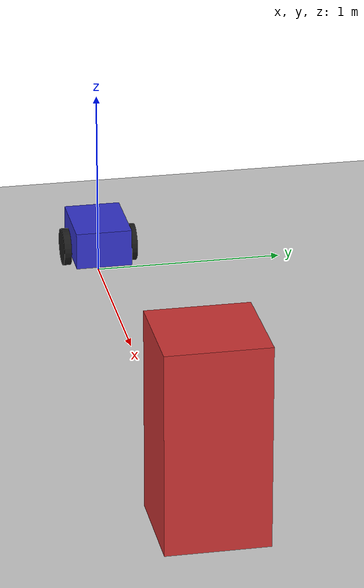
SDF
<?xml version="1.0" ?>
<sdf version="1.9">
  <world name="dimos_bot_world">

    <physics name="1ms" type="ignored">
      <max_step_size>0.001</max_step_size>
      <real_time_factor>1.0</real_time_factor>
    </physics>

    <plugin filename="gz-sim-physics-system" name="gz::sim::systems::Physics">
      <engine>
        <!-- Match the actual filename built by our flake (libgz-physics7-…). -->
        <filename>gz-physics8-bullet-featherstone-plugin</filename>
      </engine>
    </plugin>
    <plugin filename="gz-sim-user-commands-system"     name="gz::sim::systems::UserCommands"/>
    <plugin filename="gz-sim-scene-broadcaster-system" name="gz::sim::systems::SceneBroadcaster"/>
    <plugin filename="gz-sim-sensors-system"           name="gz::sim::systems::Sensors">
      <!-- ogre2 engine = OGRE-Next 2.3 with EGL surfaceless support
           (no X server / no DISPLAY required). -->
      <render_engine>ogre2</render_engine>
    </plugin>

    <light type="directional" name="sun">
      <cast_shadows>true</cast_shadows>
      <pose>0 0 10 0 0 0</pose>
      <diffuse>1 1 1 1</diffuse>
      <specular>0.5 0.5 0.5 1</specular>
      <attenuation>
        <range>1000</range><constant>0.9</constant>
        <linear>0.01</linear><quadratic>0.001</quadratic>
      </attenuation>
      <direction>-0.5 0.1 -0.9</direction>
    </light>

    <model name="ground_plane">
      <static>true</static>
      <link name="link">
        <collision name="collision">
          <geometry><plane><normal>0 0 1</normal><size>100 100</size></plane></geometry>
        </collision>
        <visual name="visual">
          <geometry><plane><normal>0 0 1</normal><size>100 100</size></plane></geometry>
          <material><ambient>0.8 0.8 0.8 1</ambient><diffuse>0.8 0.8 0.8 1</diffuse></material>
        </visual>
      </link>
    </model>

    <model name="obstacle">
      <static>true</static>
      <pose>3 0 0.5 0 0 0</pose>
      <link name="link">
        <collision name="c"><geometry><box><size>0.5 0.5 1.0</size></box></geometry></collision>
        <visual    name="v"><geometry><box><size>0.5 0.5 1.0</size></box></geometry>
          <material><ambient>0.8 0.2 0.2 1</ambient><diffuse>0.8 0.2 0.2 1</diffuse></material>
        </visual>
      </link>
    </model>

    <model name="dimos_bot">
      <pose>0 0 0.2 0 0 0</pose>

      <link name="chassis">
        <pose>0 0 0.0 0 0 0</pose>
        <inertial>
          <mass>2.0</mass>
          <inertia><ixx>0.05</ixx><iyy>0.05</iyy><izz>0.05</izz>
                   <ixy>0</ixy><ixz>0</ixz><iyz>0</iyz></inertia>
        </inertial>
        <collision name="c"><geometry><box><size>0.4 0.3 0.2</size></box></geometry></collision>
        <visual name="v"><geometry><box><size>0.4 0.3 0.2</size></box></geometry>
          <material><ambient>0.2 0.2 0.8 1</ambient><diffuse>0.2 0.2 0.8 1</diffuse></material>
        </visual>

        <sensor name="gpu_lidar" type="gpu_lidar">
          <pose>0.15 0 0.15 0 0 0</pose>
          <topic>lidar</topic>
          <update_rate>10</update_rate>
          <always_on>1</always_on>
          <visualize>false</visualize>
          <lidar>
            <scan>
              <horizontal>
                <samples>360</samples><resolution>1</resolution>
                <min_angle>-3.141592</min_angle><max_angle>3.141592</max_angle>
              </horizontal>
              <vertical>
                <samples>1</samples><resolution>1</resolution>
                <min_angle>0</min_angle><max_angle>0</max_angle>
              </vertical>
            </scan>
            <range><min>0.08</min><max>20.0</max><resolution>0.01</resolution></range>
          </lidar>
        </sensor>

        <sensor name="camera" type="camera">
          <pose>0.2 0 0.15 0 0 0</pose>
          <topic>camera</topic>
          <update_rate>10</update_rate>
          <always_on>1</always_on>
          <visualize>false</visualize>
          <camera>
            <horizontal_fov>1.047</horizontal_fov>
            <image><width>320</width><height>240</height><format>R8G8B8</format></image>
            <clip><near>0.1</near><far>100</far></clip>
            <camera_info_topic>camera_info</camera_info_topic>
          </camera>
        </sensor>
      </link>

      <link name="left_wheel">
        <pose>0 0.18 -0.05 -1.5707 0 0</pose>
        <inertial>
          <mass>0.2</mass>
          <inertia><ixx>0.001</ixx><iyy>0.001</iyy><izz>0.001</izz>
                   <ixy>0</ixy><ixz>0</ixz><iyz>0</iyz></inertia>
        </inertial>
        <collision name="c"><geometry><cylinder><radius>0.1</radius><length>0.04</length></cylinder></geometry>
          <surface><friction><ode><mu>1.0</mu><mu2>1.0</mu2></ode></friction></surface>
        </collision>
        <visual name="v"><geometry><cylinder><radius>0.1</radius><length>0.04</length></cylinder></geometry>
          <material><ambient>0.1 0.1 0.1 1</ambient><diffuse>0.1 0.1 0.1 1</diffuse></material>
        </visual>
      </link>

      <link name="right_wheel">
        <pose>0 -0.18 -0.05 -1.5707 0 0</pose>
        <inertial>
          <mass>0.2</mass>
          <inertia><ixx>0.001</ixx><iyy>0.001</iyy><izz>0.001</izz>
                   <ixy>0</ixy><ixz>0</ixz><iyz>0</iyz></inertia>
        </inertial>
        <collision name="c"><geometry><cylinder><radius>0.1</radius><length>0.04</length></cylinder></geometry>
          <surface><friction><ode><mu>1.0</mu><mu2>1.0</mu2></ode></friction></surface>
        </collision>
        <visual name="v"><geometry><cylinder><radius>0.1</radius><length>0.04</length></cylinder></geometry>
          <material><ambient>0.1 0.1 0.1 1</ambient><diffuse>0.1 0.1 0.1 1</diffuse></material>
        </visual>
      </link>

      <link name="caster">
        <pose>-0.15 0 -0.1 0 0 0</pose>
        <inertial><mass>0.05</mass>
          <inertia><ixx>1e-4</ixx><iyy>1e-4</iyy><izz>1e-4</izz>
                   <ixy>0</ixy><ixz>0</ixz><iyz>0</iyz></inertia>
        </inertial>
        <collision name="c"><geometry><sphere><radius>0.05</radius></sphere></geometry>
          <surface><friction><ode><mu>0.0</mu><mu2>0.0</mu2></ode></friction></surface>
        </collision>
        <visual name="v"><geometry><sphere><radius>0.05</radius></sphere></geometry></visual>
      </link>

      <joint name="left_wheel_joint" type="revolute">
        <parent>chassis</parent><child>left_wheel</child>
        <axis><xyz>0 0 1</xyz></axis>
      </joint>
      <joint name="right_wheel_joint" type="revolute">
        <parent>chassis</parent><child>right_wheel</child>
        <axis><xyz>0 0 1</xyz></axis>
      </joint>
      <joint name="caster_joint" type="ball">
        <parent>chassis</parent><child>caster</child>
      </joint>

      <plugin filename="gz-sim-diff-drive-system" name="gz::sim::systems::DiffDrive">
        <left_joint>left_wheel_joint</left_joint>
        <right_joint>right_wheel_joint</right_joint>
        <wheel_separation>0.36</wheel_separation>
        <wheel_radius>0.1</wheel_radius>
        <odom_publish_frequency>50</odom_publish_frequency>
        <!-- Defaults: subscribes /model/dimos_bot/cmd_vel,
                       publishes  /model/dimos_bot/odometry -->
        <frame_id>odom</frame_id>
        <child_frame_id>base_link</child_frame_id>
      </plugin>
    </model>
  </world>
</sdf>
